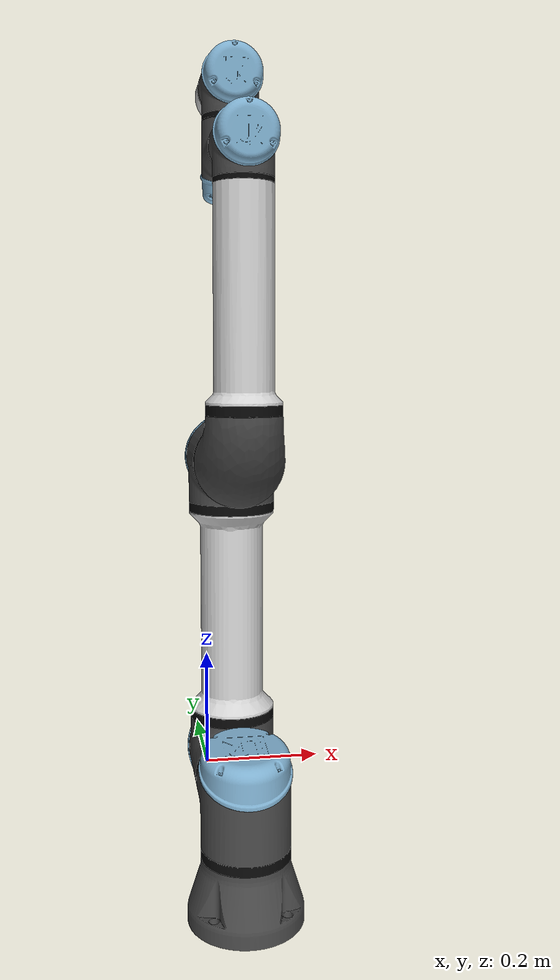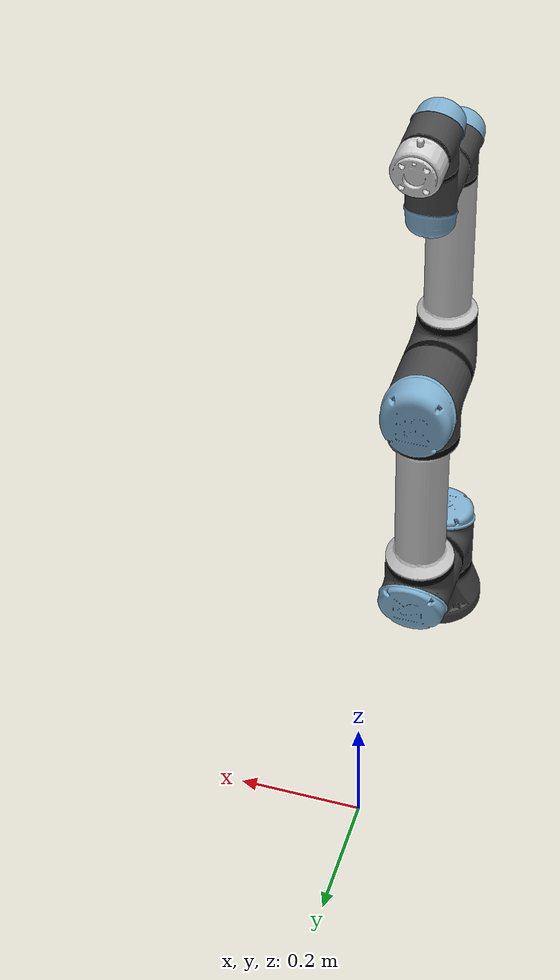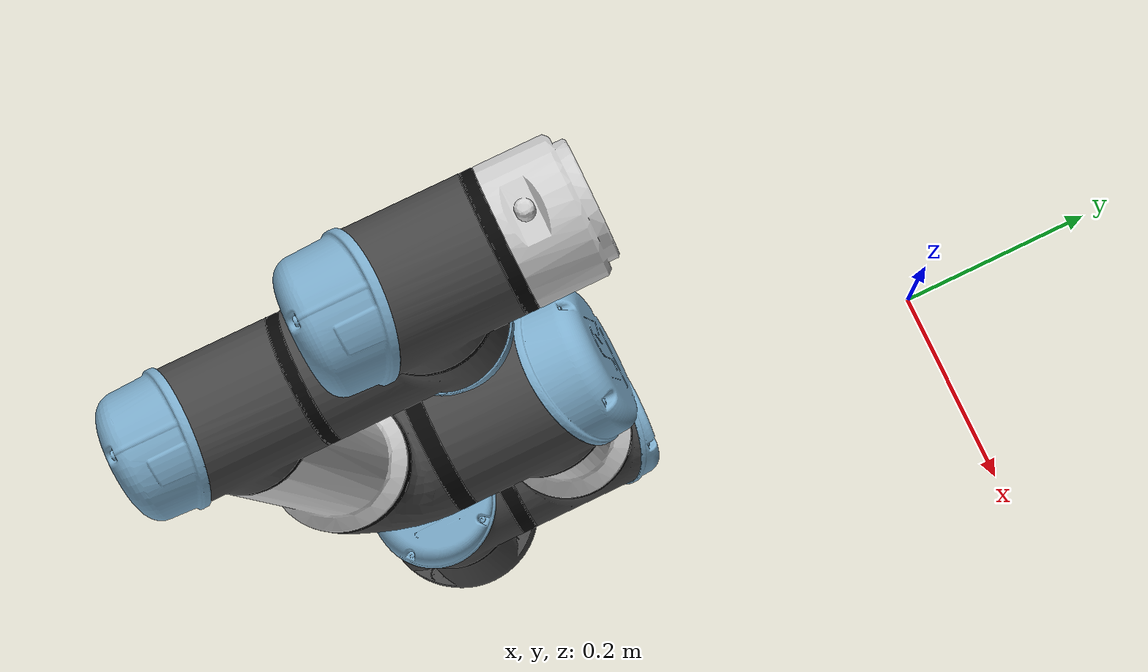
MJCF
<mujoco model="ur5e"> <!-- 定义一个名为ur5e的MuJoCo模型 -->
  <compiler angle="radian" meshdir="assets"/> <!-- 设置编译器参数：使用弧度作为角度单位，设置网格文件的目录为"assets" -->
  <default> <!-- 设置模型的默认属性 -->
    <default class="ur5e"> <!-- 为ur5e类设置默认属性 -->
      <material specular="0.5" shininess="0.25"/> <!-- 设置材料的镜面反射系数为0.5，光泽度为0.25 -->
      <joint axis="0 1 0" range="-6.28319 6.28319" armature="0.1"/> <!-- 定义关节的默认属性：旋转轴为Y轴，旋转范围为-2π到2π，装甲参数为0.1 -->
      <general gaintype="fixed" biastype="affine" ctrlrange="-6.2831 6.2831" gainprm="2000" biasprm="0 -2000 -400"
        forcerange="-150 150"/> <!-- 定义一般控制参数：增益类型为固定，偏置类型为仿射，控制范围为-2π到2π，增益参数为2000，偏置参数为0、-2000、-400，力范围为-150到150 -->
      <default class="size3"> <!-- 定义名为size3的类的默认属性 -->
        <default class="size3_limited"> <!-- 在size3类中，为size3_limited子类设置默认属性 -->
          <joint range="-3.1415 3.1415"/> <!-- 关节旋转范围设置为-π到π -->
          <general ctrlrange="-3.1415 3.1415"/> <!-- 控制范围也设置为-π到π -->
        </default>
      </default>
      <default class="size1"> <!-- 定义名为size1的类的默认属性 -->
        <general gainprm="500" biasprm="0 -500 -100" forcerange="-28 28"/> <!-- 定义一般控制参数：增益参数为500，偏置参数为0、-500、-100，力范围为-28到28 -->
      </default>
      <default class="visual"> <!-- 定义视觉相关的默认属性 -->
        <geom type="mesh" contype="0" conaffinity="0" group="2"/> <!-- 几何形状类型为网格，不参与碰撞检测，分配到组2 -->
      </default>
      <default class="collision"> <!-- 定义碰撞相关的默认属性 -->
        <geom type="capsule" group="3"/> <!-- 几何形状类型为胶囊体，分配到组3 -->
        <default class="eef_collision"> <!-- 为末端执行器的碰撞检测定义默认属性 -->
          <geom type="cylinder"/> <!-- 几何形状类型为圆柱体 -->
        </default>
      </default>
      <site size="0.001" rgba="0.5 0.5 0.5 0.3" group="4"/> <!-- 定义位置点的大小、颜色和组别 -->
    </default>
  </default>
  <asset> <!-- 定义模型使用的资源集合 -->
    <material class="ur5e" name="black" rgba="0.033 0.033 0.033 1"/> <!-- 定义一个名为black的材质，用于ur5e类，颜色为非常深的灰（几乎黑色），不透明度为1 -->
    <material class="ur5e" name="jointgray" rgba="0.278 0.278 0.278 1"/> <!-- 定义一个名为jointgray的材质，用于ur5e类，颜色为中等灰色，不透明度为1 -->
    <material class="ur5e" name="linkgray" rgba="0.82 0.82 0.82 1"/> <!-- 定义一个名为linkgray的材质，用于ur5e类，颜色为浅灰色，不透明度为1 -->
    <material class="ur5e" name="urblue" rgba="0.49 0.678 0.8 1"/> <!-- 定义一个名为urblue的材质，用于ur5e类，颜色为浅蓝色，不透明度为1 -->
    <mesh file="base_0.stl"/> <!-- 引用名为base_0.stl的网格文件 -->
    <mesh file="base_1.stl"/> <!-- 引用名为base_1.stl的网格文件 -->
    <mesh file="shoulder_0.stl"/> <!-- 引用名为shoulder_0.stl的网格文件 -->
    <mesh file="shoulder_1.stl"/> <!-- 引用名为shoulder_1.stl的网格文件 -->
    <mesh file="shoulder_2.stl"/> <!-- 引用名为shoulder_2.stl的网格文件 -->
    <mesh file="upperarm_0.stl"/> <!-- 引用名为upperarm_0.stl的网格文件 -->
    <mesh file="upperarm_1.stl"/> <!-- 引用名为upperarm_1.stl的网格文件 -->
    <mesh file="upperarm_2.stl"/> <!-- 引用名为upperarm_2.stl的网格文件 -->
    <mesh file="upperarm_3.stl"/> <!-- 引用名为upperarm_3.stl的网格文件 -->
    <mesh file="forearm_0.stl"/> <!-- 引用名为forearm_0.stl的网格文件 -->
    <mesh file="forearm_1.stl"/> <!-- 引用名为forearm_1.stl的网格文件 -->
    <mesh file="forearm_2.stl"/> <!-- 引用名为forearm_2.stl的网格文件 -->
    <mesh file="forearm_3.stl"/> <!-- 引用名为forearm_3.stl的网格文件 -->
    <mesh file="wrist1_0.stl"/> <!-- 引用名为wrist1_0.stl的网格文件 -->
    <mesh file="wrist1_1.stl"/> <!-- 引用名为wrist1_1.stl的网格文件 -->
    <mesh file="wrist1_2.stl"/> <!-- 引用名为wrist1_2.stl的网格文件 -->
    <mesh file="wrist2_0.stl"/> <!-- 引用名为wrist2_0.stl的网格文件 -->
    <mesh file="wrist2_1.stl"/> <!-- 引用名为wrist2_1.stl的网格文件 -->
    <mesh file="wrist2_2.stl"/> <!-- 引用名为wrist2_2.stl的网格文件 -->
    <mesh file="wrist3.stl"/> <!-- 引用名为wrist3.stl的网格文件 -->
  </asset>
  <worldbody> <!-- 定义模型的世界体部分，是所有物体的容器 -->
    <light name="spotlight" mode="targetbodycom" target="wrist_2_link" pos="0 -1 2"/> <!-- 定义一个名为spotlight的光源，照射目标为wrist_2_link，位置在(0, -1, 2) -->
    <body name="base" pos="0 -0.5 0" quat="1 0 0 0" childclass="ur5e"> <!-- 定义基座体，位置在(0, -0.5, 0)，无旋转，所有子体默认属于ur5e类 -->
      <inertial mass="4.0" pos="0 0 0" diaginertia="0.00443333156 0.00443333156 0.0072"/> <!-- 基座的惯性属性：质量4.0kg，惯性张量对角线元素 -->
      <geom mesh="base_0" material="black" class="visual"/> <!-- 基座的视觉属性，使用黑色材质和base_0网格 -->
      <geom mesh="base_1" material="jointgray" class="visual"/> <!-- 同上，使用jointgray材质和base_1网格 -->
      <body name="shoulder_link" pos="0 0 0.163"> <!-- 定义肩部链接，相对于基座的位置 -->
        <inertial mass="3.7" pos="0 0 0" diaginertia="0.0102675 0.0102675 0.00666"/> <!-- 肩部链接的惯性属性 -->
        <joint name="shoulder_pan_joint" class="size3" axis="0 0 1"/> <!-- 肩部的旋转关节，旋转轴为Z轴 -->
        <geom mesh="shoulder_0" material="urblue" class="visual"/> <!-- 肩部的视觉属性，使用urblue材质和shoulder_0网格 -->
        <geom mesh="shoulder_1" material="black" class="visual"/> <!-- 同上，使用black材质和shoulder_1网格 -->
        <geom mesh="shoulder_2" material="jointgray" class="visual"/> <!-- 同上，使用jointgray材质和shoulder_2网格 -->
        <geom class="collision" size="0.06 0.06" pos="0 0 -0.04"/> <!-- 肩部的碰撞属性，定义一个碰撞几何体 -->
        <body name="upper_arm_link" pos="0 0.138 0" quat="1 0 0 0"> <!-- 定义上臂链接 -->
          <inertial mass="8.393" pos="0 0 0.2125" diaginertia="0.133886 0.133886 0.0151074"/> <!-- 上臂的惯性属性 -->
          <joint name="shoulder_lift_joint" class="size3"/> <!-- 上臂的升降关节，无具体旋转轴指定，采用默认设置 -->
          <geom mesh="upperarm_0" material="linkgray" class="visual"/> <!-- 上臂的视觉属性，使用linkgray材质和upperarm_0网格 -->
          <geom mesh="upperarm_1" material="black" class="visual"/> <!-- 同上，使用black材质和upperarm_1网格 -->
          <geom mesh="upperarm_2" material="jointgray" class="visual"/> <!-- 同上，使用jointgray材质和upperarm_2网格 -->
          <geom mesh="upperarm_3" material="urblue" class="visual"/> <!-- 同上，使用urblue材质和upperarm_3网格 -->
          <geom class="collision" pos="0 -0.04 0" quat="1 1 0 0" size="0.06 0.06 0.06"/> <!-- 上臂的碰撞属性，定义了一个碰撞几何体，位置和旋转被指定 -->
          <geom class="collision" size="0.05 0.2" pos="0 0 0.2"/> <!-- 定义另一个碰撞几何体，用于上臂 -->
          <body name="forearm_link" pos="0 -0.131 0.425"> <!-- 定义前臂链接 -->
            <inertial mass="2.275" pos="0 0 0.196" diaginertia="0.0311796 0.0311796 0.004095"/> <!-- 前臂的惯性属性 -->
            <joint name="elbow_joint" class="size3_limited"/> <!-- 前臂的肘关节，限制了其大小 -->
            <geom mesh="forearm_0" material="urblue" class="visual"/> <!-- 前臂的视觉属性，使用urblue材质和forearm_0网格 -->
            <geom mesh="forearm_1" material="linkgray" class="visual"/> <!-- 同上，使用linkgray材质和forearm_1网格 -->
            <geom mesh="forearm_2" material="black" class="visual"/> <!-- 同上，使用black材质和forearm_2网格 -->
            <geom mesh="forearm_3" material="jointgray" class="visual"/> <!-- 同上，使用jointgray材质和forearm_3网格 -->
            <geom class="collision" pos="0 0.08 0" quat="1 1 0 0" size="0.055 0.06"/> <!-- 前臂的碰撞属性，定义了一个碰撞几何体 -->
            <geom class="collision" size="0.038 0.19" pos="0 0 0.2"/> <!-- 定义另一个碰撞几何体，用于前臂 -->
            <body name="wrist_1_link" pos="0 0 0.392" quat="1 0 0 0"> <!-- 定义腕部1链接 -->
              <inertial mass="1.219" pos="0 0.127 0" diaginertia="0.0025599 0.0025599 0.0021942"/> <!-- 腕部1的惯性属性 -->
              <joint name="wrist_1_joint" class="size1"/> <!-- 腕部1的关节 -->
              <geom mesh="wrist1_0" material="black" class="visual"/> <!-- 腕部1的视觉属性，使用black材质和wrist1_0网格 -->
              <geom mesh="wrist1_1" material="urblue" class="visual"/> <!-- 同上，使用urblue材质和wrist1_1网格 -->
              <geom mesh="wrist1_2" material="jointgray" class="visual"/> <!-- 同上，使用jointgray材质和wrist1_2网格 -->
              <geom class="collision" pos="0 0.05 0" quat="1 1 0 0" size="0.04 0.07"/> <!-- 腕部1的碰撞属性 -->
              <body name="wrist_2_link" pos="0 0.127 0"> <!-- 定义腕部2链接 -->
                <inertial mass="1.219" pos="0 0 0.1" diaginertia="0.0025599 0.0021942 0.0025599"/> <!-- 腕部2的惯性属性 -->
                <joint name="wrist_2_joint" axis="0 0 1" class="size1"/> <!-- 腕部2的关节，旋转轴为Z轴 -->
                <geom mesh="wrist2_0" material="black" class="visual"/> <!-- 腕部2的视觉属性，使用black材质和wrist2_0网格 -->
                <geom mesh="wrist2_1" material="urblue" class="visual"/> <!-- 同上，使用urblue材质和wrist2_1网格 -->
                <geom mesh="wrist2_2" material="jointgray" class="visual"/>
                <geom class="collision" size="0.04 0.06" pos="0 0 0.04"/>
                <geom class="collision" pos="0 0.02 0.1" quat="1 1 0 0" size="0.04 0.04"/>
                <body name="wrist_3_link" pos="0 0 0.1">
                  <inertial mass="0.1889" pos="0 0.0771683 0" quat="1 0 0 1"
                    diaginertia="0.000132134 9.90863e-05 9.90863e-05"/>
                  <joint name="wrist_3_joint" class="size1"/>
                  <geom material="linkgray" mesh="wrist3" class="visual"/>
                  <geom class="eef_collision" pos="0 0.08 0" quat="1 1 0 0" size="0.04 0.02"/>
                  <site name="attachment_site" pos="0 0.1 0" quat="-1 1 0 0"/>
                </body>
              </body>
            </body>
          </body>
        </body>
      </body>
    </body>
  </worldbody>
</mujoco>
